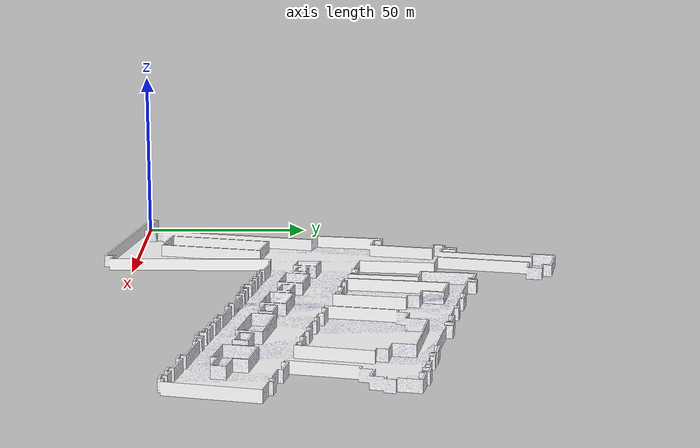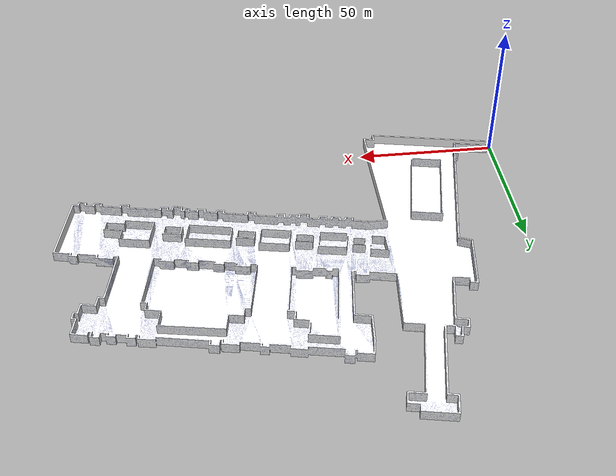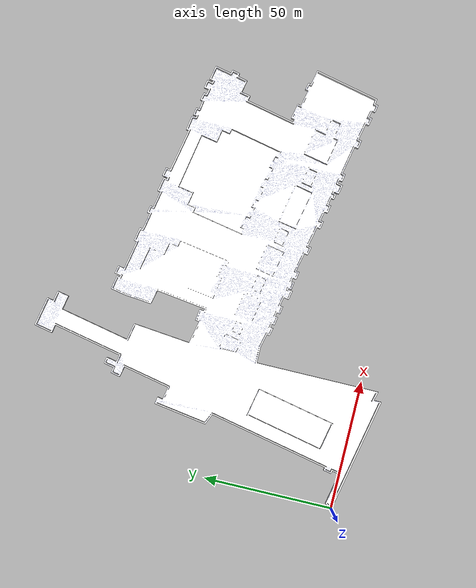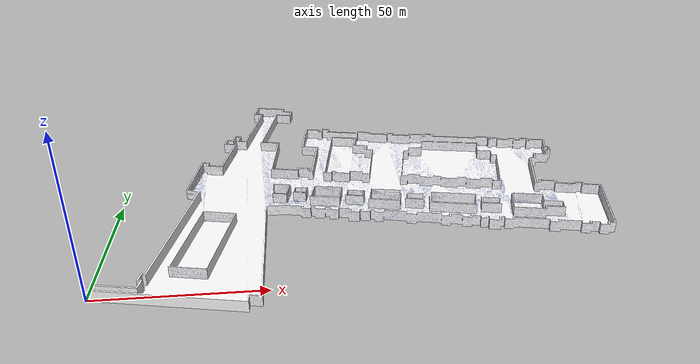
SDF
<?xml version="1.0" ?>
<sdf version="1.4">
  <model name="Hbf-Lvl0">
    <static>true</static>
    <link name="walls">
      <collision name="collision">
        <geometry>
          <mesh>
            <uri>model://room_hbf_lvl0/meshes/collision.dae</uri>
          </mesh>
        </geometry>
      </collision>
      <visual name="visual">
        <geometry>
          <mesh>
            <uri>model://room_hbf_lvl0/meshes/visual.dae</uri>
          </mesh>
        </geometry>
        <cast_shadows>false</cast_shadows>
      </visual>
    </link>
  </model>
</sdf>
